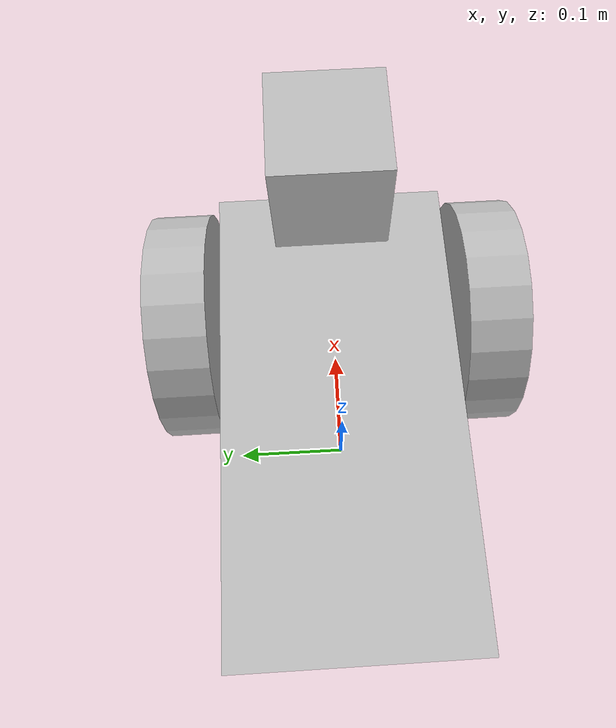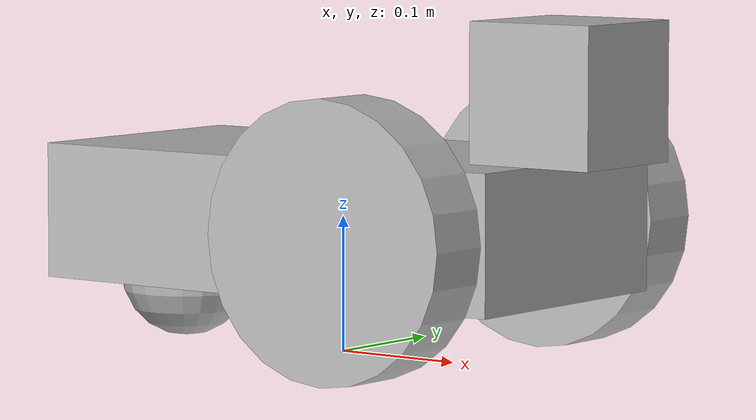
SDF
<?xml version='1.0'?>
<sdf version='1.4'>
    <model name="diffdrive">
        <static>false</static>
        <link name='chassis'>
            <pose>0 0 0.1 0 0 0</pose>
            <inertial>
                <mass>10.0</mass>
                <pose>0.0 0.0 0.1 0 0 0</pose>
                <inertia>
                    <ixx>0.5</ixx>
                    <iyy>1.0</iyy>
                    <izz>0.1</izz>
                </inertia>
            </inertial>
            <collision name='collision'>
                <geometry>
                    <box>
                        <size>0.4 0.2 0.1</size>
                    </box>
                </geometry>
            </collision>
            <visual name='visual'>
                <geometry>
                    <box>
                        <size>0.4 0.2 0.1</size>
                    </box>
                </geometry>
            </visual>
            <!-- This section is for the caster -->
            <collision name='caster_collision'>
                <pose>-0.15 0 -0.05 0 0 0</pose>
                <geometry>
                    <sphere>
                        <radius>0.05</radius>
                    </sphere>
                </geometry>
                <surface>
                    <friction>
                        <ode>
                            <mu>0</mu>
                            <mu2>0</mu2>
                            <slip1>1.0</slip1>
                            <slip2>1.0</slip2>
                        </ode>
                    </friction>
                </surface>
            </collision>
            <visual name='caster_visual'>
                <pose>-0.15 0 -0.05 0 0 0</pose>
                <geometry>
                    <sphere>
                        <radius>0.05</radius>
                    </sphere>
                </geometry>
            </visual>
        </link>

        <link name='left_wheel'>
            <pose>0.1 0.13 0.1 0 1.5707 1.5707</pose>
            <collision name='collision'>
                <geometry>
                    <cylinder>
                        <radius>0.1</radius>
                        <length>0.05</length>
                    </cylinder>
                </geometry>
            </collision>
            <visual name='visual'>
                <geometry>
                    <cylinder>
                        <radius>0.1</radius>
                        <length>0.05</length>
                    </cylinder>
                </geometry>
            </visual>
        </link>

        <link name='right_wheel'>
            <pose>0.1 -0.13 0.1 0 1.5707 1.5707</pose>
            <collision name='collision'>
                <geometry>
                    <cylinder>
                        <radius>0.1</radius>
                        <length>0.05</length>
                    </cylinder>
                </geometry>
            </collision>
            <visual name='visual'>
                <geometry>
                    <cylinder>
                        <radius>0.1</radius>
                        <length>0.05</length>
                    </cylinder>
                </geometry>
            </visual>
        </link>

        <!-- Joints -->
        <joint type='revolute' name='left_wheel_hinge'>
            <pose>0 0 -0.03 0 0 0</pose>
            <parent>chassis</parent>
            <child>left_wheel</child>
            <axis>
                <xyz>0 1 0</xyz>
            </axis>
        </joint>
        <joint type='revolute' name='right_wheel_hinge'>
            <pose>0 0 0.03 0 0 0</pose>
            <parent>chassis</parent>
            <child>right_wheel</child>
            <axis>
                <xyz>0 1 0</xyz>
            </axis>
        </joint>

        <include>
            <uri>model://camera</uri>
            <pose>0.2 0 0.2 0 0 0</pose>
        </include>
        <joint name='camera_joint' type='fixed'>
            <parent>chassis</parent>
            <child>camera::link</child>
        </joint>

        <!-- Plugins -->
        <plugin name='differential_drive_controller' filename='libgazebo_ros_diff_drive.so'>
            <legacyMode>false</legacyMode>
            <alwaysOn>true</alwaysOn>
            <updateRate>20</updateRate>
            <leftJoint>left_wheel_hinge</leftJoint>
            <rightJoint>right_wheel_hinge</rightJoint>
            <wheelSeparation>0.4</wheelSeparation>
            <wheelDiameter>0.1</wheelDiameter>
            <torque>20</torque>
            <commandTopic>cmd_vel</commandTopic>
            <odometryTopic>odom</odometryTopic>
            <odometryFrame>odom</odometryFrame>
            <robotBaseFrame>base_footprint</robotBaseFrame>
        </plugin>

    </model>
</sdf>

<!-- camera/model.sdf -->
<sdf version="1.5">
  <model name="camera">
    <pose>0 0 0.05 0 0 0</pose>
    <link name="link">
      <inertial>
        <mass>0.1</mass>
        <inertia>
          <ixx>0.000166667</ixx>
          <iyy>0.000166667</iyy>
          <izz>0.000166667</izz>
        </inertia>
      </inertial>
      <collision name="collision">
        <geometry>
          <box>
            <size>0.1 0.1 0.1</size>
          </box>
        </geometry>
      </collision>
      <visual name="visual">
        <geometry>
          <box>
            <size>0.1 0.1 0.1</size>
          </box>
        </geometry>
      </visual>
      <sensor name="camera" type="camera">
        <camera>
          <horizontal_fov>1.047</horizontal_fov>
          <image>
            <width>320</width>
            <height>240</height>
          </image>
          <clip>
            <near>0.1</near>
            <far>100</far>
          </clip>
        </camera>
        <always_on>1</always_on>
        <update_rate>30</update_rate>
        <visualize>true</visualize>
      </sensor>
    </link>
  </model>
</sdf>
